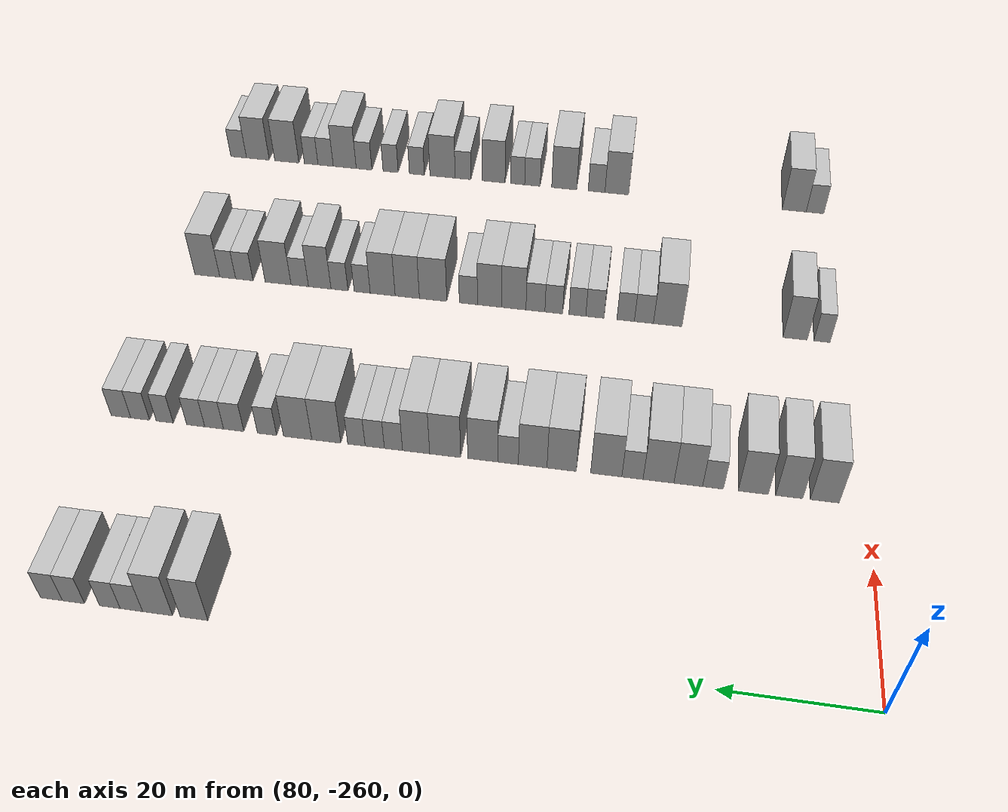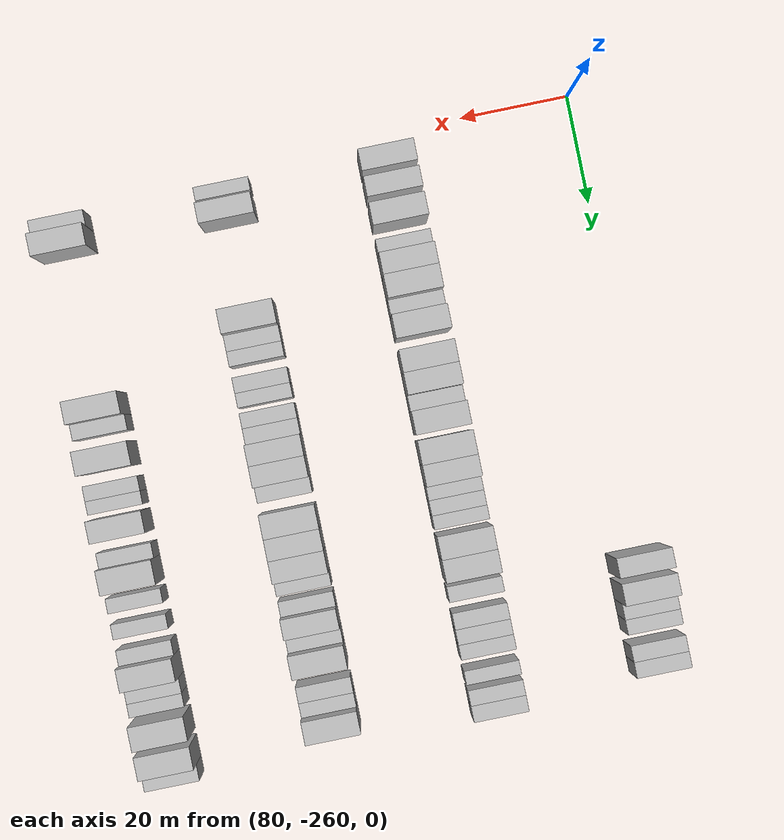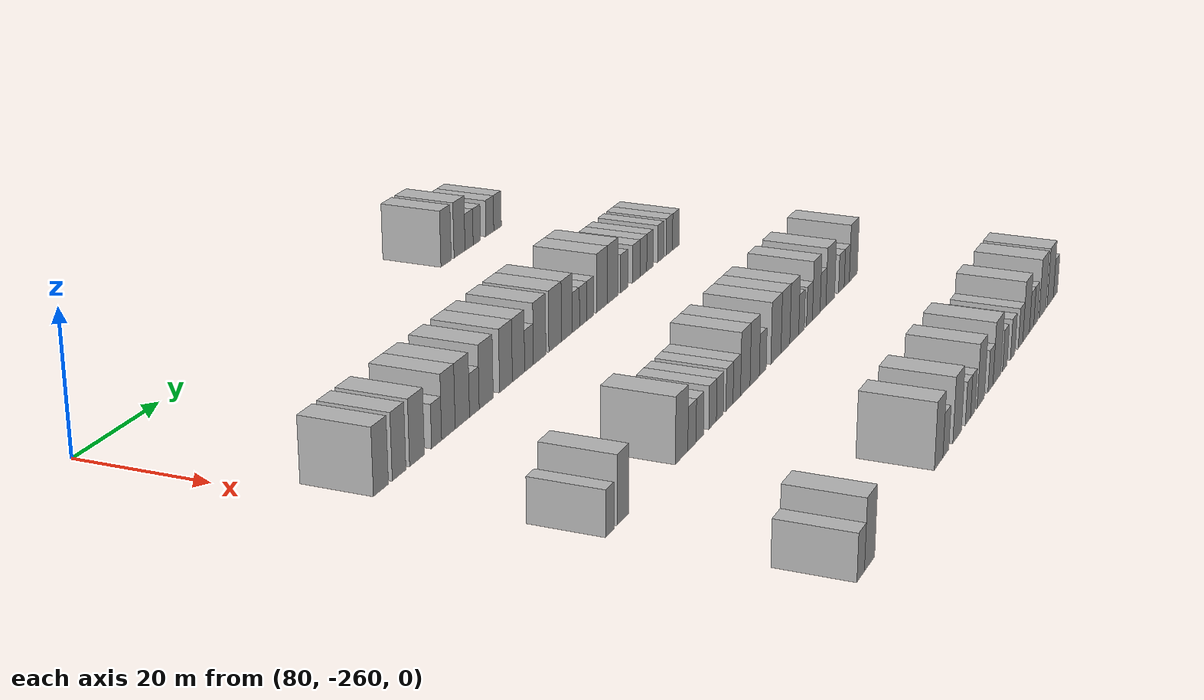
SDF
<sdf version="1.6">
 <world name="default">
  <model name="building_518">
   <static>1</static>
   <pose>85.0000 -174.7602 0 0.000000 0.000000 0.000000</pose>
   <link name="link">
    <pose>0 0 4.50 0 0 0</pose>
    <collision name="collision"><geometry><box><size>10.0000 3.6085 9.0000</size></box></geometry></collision>
    <visual name="visual">
     <cast_shadows>0</cast_shadows>
     <geometry><box><size>10.0000 3.6085 9.0000</size></box></geometry>
     <material>
      <script>
       <uri>model://HANNAS_wall/materials/scripts</uri>
       <uri>model://HANNAS_wall/materials/textures</uri>
       <name>vrc/HANNAS_wall</name>
      </script>
     </material>
    </visual>
   </link>
  </model>
  <model name="building_519">
   <static>1</static>
   <pose>85.0000 -169.9796 0 0.000000 0.000000 0.000000</pose>
   <link name="link">
    <pose>0 0 4.50 0 0 0</pose>
    <collision name="collision"><geometry><box><size>10.0000 3.9527 9.0000</size></box></geometry></collision>
    <visual name="visual">
     <cast_shadows>0</cast_shadows>
     <geometry><box><size>10.0000 3.9527 9.0000</size></box></geometry>
     <material>
      <script>
       <uri>model://HANNAS_wall/materials/scripts</uri>
       <uri>model://HANNAS_wall/materials/textures</uri>
       <name>vrc/HANNAS_wall</name>
      </script>
     </material>
    </visual>
   </link>
  </model>
  <model name="building_520">
   <static>1</static>
   <pose>85.0000 -166.5234 0 0.000000 0.000000 0.000000</pose>
   <link name="link">
    <pose>0 0 3.00 0 0 0</pose>
    <collision name="collision"><geometry><box><size>10.0000 2.9598 6.0000</size></box></geometry></collision>
    <visual name="visual">
     <cast_shadows>0</cast_shadows>
     <geometry><box><size>10.0000 2.9598 6.0000</size></box></geometry>
     <material>
      <script>
       <uri>model://HANNAS_wall/materials/scripts</uri>
       <uri>model://HANNAS_wall/materials/textures</uri>
       <name>vrc/HANNAS_wall</name>
      </script>
     </material>
    </visual>
   </link>
  </model>
  <model name="building_521">
   <static>1</static>
   <pose>85.0000 -163.6784 0 0.000000 0.000000 0.000000</pose>
   <link name="link">
    <pose>0 0 3.00 0 0 0</pose>
    <collision name="collision"><geometry><box><size>10.0000 2.7301 6.0000</size></box></geometry></collision>
    <visual name="visual">
     <cast_shadows>0</cast_shadows>
     <geometry><box><size>10.0000 2.7301 6.0000</size></box></geometry>
     <material>
      <script>
       <uri>model://HANNAS_wall/materials/scripts</uri>
       <uri>model://HANNAS_wall/materials/textures</uri>
       <name>vrc/HANNAS_wall</name>
      </script>
     </material>
    </visual>
   </link>
  </model>
  <model name="building_522">
   <static>1</static>
   <pose>85.0000 -158.8278 0 0.000000 0.000000 0.000000</pose>
   <link name="link">
    <pose>0 0 3.00 0 0 0</pose>
    <collision name="collision"><geometry><box><size>10.0000 2.9711 6.0000</size></box></geometry></collision>
    <visual name="visual">
     <cast_shadows>0</cast_shadows>
     <geometry><box><size>10.0000 2.9711 6.0000</size></box></geometry>
     <material>
      <script>
       <uri>model://HANNAS_wall/materials/scripts</uri>
       <uri>model://HANNAS_wall/materials/textures</uri>
       <name>vrc/HANNAS_wall</name>
      </script>
     </material>
    </visual>
   </link>
  </model>
  <model name="building_523">
   <static>1</static>
   <pose>85.0000 -155.8827 0 0.000000 0.000000 0.000000</pose>
   <link name="link">
    <pose>0 0 3.00 0 0 0</pose>
    <collision name="collision"><geometry><box><size>10.0000 2.9192 6.0000</size></box></geometry></collision>
    <visual name="visual">
     <cast_shadows>0</cast_shadows>
     <geometry><box><size>10.0000 2.9192 6.0000</size></box></geometry>
     <material>
      <script>
       <uri>model://HANNAS_wall/materials/scripts</uri>
       <uri>model://HANNAS_wall/materials/textures</uri>
       <name>vrc/HANNAS_wall</name>
      </script>
     </material>
    </visual>
   </link>
  </model>
  <model name="building_724">
   <static>1</static>
   <pose>115.0000 -254.0323 0 0.000000 0.000000 0.000000</pose>
   <link name="link">
    <pose>0 0 4.50 0 0 0</pose>
    <collision name="collision"><geometry><box><size>10.0000 3.8875 9.0000</size></box></geometry></collision>
    <visual name="visual">
     <cast_shadows>0</cast_shadows>
     <geometry><box><size>10.0000 3.8875 9.0000</size></box></geometry>
     <material>
      <script>
       <uri>model://HANNAS_wall/materials/scripts</uri>
       <uri>model://HANNAS_wall/materials/textures</uri>
       <name>vrc/HANNAS_wall</name>
      </script>
     </material>
    </visual>
   </link>
  </model>
  <model name="building_725">
   <static>1</static>
   <pose>115.0000 -249.2647 0 0.000000 0.000000 0.000000</pose>
   <link name="link">
    <pose>0 0 4.50 0 0 0</pose>
    <collision name="collision"><geometry><box><size>10.0000 3.6476 9.0000</size></box></geometry></collision>
    <visual name="visual">
     <cast_shadows>0</cast_shadows>
     <geometry><box><size>10.0000 3.6476 9.0000</size></box></geometry>
     <material>
      <script>
       <uri>model://HANNAS_wall/materials/scripts</uri>
       <uri>model://HANNAS_wall/materials/textures</uri>
       <name>vrc/HANNAS_wall</name>
      </script>
     </material>
    </visual>
   </link>
  </model>
  <model name="building_726">
   <static>1</static>
   <pose>115.0000 -244.4013 0 0.000000 0.000000 0.000000</pose>
   <link name="link">
    <pose>0 0 4.50 0 0 0</pose>
    <collision name="collision"><geometry><box><size>10.0000 4.0792 9.0000</size></box></geometry></collision>
    <visual name="visual">
     <cast_shadows>0</cast_shadows>
     <geometry><box><size>10.0000 4.0792 9.0000</size></box></geometry>
     <material>
      <script>
       <uri>model://HANNAS_wall/materials/scripts</uri>
       <uri>model://HANNAS_wall/materials/textures</uri>
       <name>vrc/HANNAS_wall</name>
      </script>
     </material>
    </visual>
   </link>
  </model>
  <model name="building_727">
   <static>1</static>
   <pose>115.0000 -238.9342 0 0.000000 0.000000 0.000000</pose>
   <link name="link">
    <pose>0 0 3.00 0 0 0</pose>
    <collision name="collision"><geometry><box><size>10.0000 2.8551 6.0000</size></box></geometry></collision>
    <visual name="visual">
     <cast_shadows>0</cast_shadows>
     <geometry><box><size>10.0000 2.8551 6.0000</size></box></geometry>
     <material>
      <script>
       <uri>model://HANNAS_wall/materials/scripts</uri>
       <uri>model://HANNAS_wall/materials/textures</uri>
       <name>vrc/HANNAS_wall</name>
      </script>
     </material>
    </visual>
   </link>
  </model>
  <model name="building_728">
   <static>1</static>
   <pose>115.0000 -235.5442 0 0.000000 0.000000 0.000000</pose>
   <link name="link">
    <pose>0 0 4.50 0 0 0</pose>
    <collision name="collision"><geometry><box><size>10.0000 3.9249 9.0000</size></box></geometry></collision>
    <visual name="visual">
     <cast_shadows>0</cast_shadows>
     <geometry><box><size>10.0000 3.9249 9.0000</size></box></geometry>
     <material>
      <script>
       <uri>model://HANNAS_wall/materials/scripts</uri>
       <uri>model://HANNAS_wall/materials/textures</uri>
       <name>vrc/HANNAS_wall</name>
      </script>
     </material>
    </visual>
   </link>
  </model>
  <model name="building_729">
   <static>1</static>
   <pose>115.0000 -231.4609 0 0.000000 0.000000 0.000000</pose>
   <link name="link">
    <pose>0 0 4.50 0 0 0</pose>
    <collision name="collision"><geometry><box><size>10.0000 4.2416 9.0000</size></box></geometry></collision>
    <visual name="visual">
     <cast_shadows>0</cast_shadows>
     <geometry><box><size>10.0000 4.2416 9.0000</size></box></geometry>
     <material>
      <script>
       <uri>model://HANNAS_wall/materials/scripts</uri>
       <uri>model://HANNAS_wall/materials/textures</uri>
       <name>vrc/HANNAS_wall</name>
      </script>
     </material>
    </visual>
   </link>
  </model>
  <model name="building_730">
   <static>1</static>
   <pose>115.0000 -227.8737 0 0.000000 0.000000 0.000000</pose>
   <link name="link">
    <pose>0 0 3.00 0 0 0</pose>
    <collision name="collision"><geometry><box><size>10.0000 2.9326 6.0000</size></box></geometry></collision>
    <visual name="visual">
     <cast_shadows>0</cast_shadows>
     <geometry><box><size>10.0000 2.9326 6.0000</size></box></geometry>
     <material>
      <script>
       <uri>model://HANNAS_wall/materials/scripts</uri>
       <uri>model://HANNAS_wall/materials/textures</uri>
       <name>vrc/HANNAS_wall</name>
      </script>
     </material>
    </visual>
   </link>
  </model>
  <model name="building_731">
   <static>1</static>
   <pose>115.0000 -224.2424 0 0.000000 0.000000 0.000000</pose>
   <link name="link">
    <pose>0 0 4.50 0 0 0</pose>
    <collision name="collision"><geometry><box><size>10.0000 4.3300 9.0000</size></box></geometry></collision>
    <visual name="visual">
     <cast_shadows>0</cast_shadows>
     <geometry><box><size>10.0000 4.3300 9.0000</size></box></geometry>
     <material>
      <script>
       <uri>model://HANNAS_wall/materials/scripts</uri>
       <uri>model://HANNAS_wall/materials/textures</uri>
       <name>vrc/HANNAS_wall</name>
      </script>
     </material>
    </visual>
   </link>
  </model>
  <model name="building_732">
   <static>1</static>
   <pose>115.0000 -218.0277 0 0.000000 0.000000 0.000000</pose>
   <link name="link">
    <pose>0 0 4.50 0 0 0</pose>
    <collision name="collision"><geometry><box><size>10.0000 4.0995 9.0000</size></box></geometry></collision>
    <visual name="visual">
     <cast_shadows>0</cast_shadows>
     <geometry><box><size>10.0000 4.0995 9.0000</size></box></geometry>
     <material>
      <script>
       <uri>model://HANNAS_wall/materials/scripts</uri>
       <uri>model://HANNAS_wall/materials/textures</uri>
       <name>vrc/HANNAS_wall</name>
      </script>
     </material>
    </visual>
   </link>
  </model>
  <model name="building_733">
   <static>1</static>
   <pose>115.0000 -213.9700 0 0.000000 0.000000 0.000000</pose>
   <link name="link">
    <pose>0 0 4.50 0 0 0</pose>
    <collision name="collision"><geometry><box><size>10.0000 4.0159 9.0000</size></box></geometry></collision>
    <visual name="visual">
     <cast_shadows>0</cast_shadows>
     <geometry><box><size>10.0000 4.0159 9.0000</size></box></geometry>
     <material>
      <script>
       <uri>model://HANNAS_wall/materials/scripts</uri>
       <uri>model://HANNAS_wall/materials/textures</uri>
       <name>vrc/HANNAS_wall</name>
      </script>
     </material>
    </visual>
   </link>
  </model>
  <model name="building_734">
   <static>1</static>
   <pose>115.0000 -210.5122 0 0.000000 0.000000 0.000000</pose>
   <link name="link">
    <pose>0 0 3.00 0 0 0</pose>
    <collision name="collision"><geometry><box><size>10.0000 2.8999 6.0000</size></box></geometry></collision>
    <visual name="visual">
     <cast_shadows>0</cast_shadows>
     <geometry><box><size>10.0000 2.8999 6.0000</size></box></geometry>
     <material>
      <script>
       <uri>model://HANNAS_wall/materials/scripts</uri>
       <uri>model://HANNAS_wall/materials/textures</uri>
       <name>vrc/HANNAS_wall</name>
      </script>
     </material>
    </visual>
   </link>
  </model>
  <model name="building_735">
   <static>1</static>
   <pose>115.0000 -206.9286 0 0.000000 0.000000 0.000000</pose>
   <link name="link">
    <pose>0 0 4.50 0 0 0</pose>
    <collision name="collision"><geometry><box><size>10.0000 4.2672 9.0000</size></box></geometry></collision>
    <visual name="visual">
     <cast_shadows>0</cast_shadows>
     <geometry><box><size>10.0000 4.2672 9.0000</size></box></geometry>
     <material>
      <script>
       <uri>model://HANNAS_wall/materials/scripts</uri>
       <uri>model://HANNAS_wall/materials/textures</uri>
       <name>vrc/HANNAS_wall</name>
      </script>
     </material>
    </visual>
   </link>
  </model>
  <model name="building_736">
   <static>1</static>
   <pose>115.0000 -201.5834 0 0.000000 0.000000 0.000000</pose>
   <link name="link">
    <pose>0 0 4.50 0 0 0</pose>
    <collision name="collision"><geometry><box><size>10.0000 4.4232 9.0000</size></box></geometry></collision>
    <visual name="visual">
     <cast_shadows>0</cast_shadows>
     <geometry><box><size>10.0000 4.4232 9.0000</size></box></geometry>
     <material>
      <script>
       <uri>model://HANNAS_wall/materials/scripts</uri>
       <uri>model://HANNAS_wall/materials/textures</uri>
       <name>vrc/HANNAS_wall</name>
      </script>
     </material>
    </visual>
   </link>
  </model>
  <model name="building_737">
   <static>1</static>
   <pose>115.0000 -197.4317 0 0.000000 0.000000 0.000000</pose>
   <link name="link">
    <pose>0 0 4.50 0 0 0</pose>
    <collision name="collision"><geometry><box><size>10.0000 3.8803 9.0000</size></box></geometry></collision>
    <visual name="visual">
     <cast_shadows>0</cast_shadows>
     <geometry><box><size>10.0000 3.8803 9.0000</size></box></geometry>
     <material>
      <script>
       <uri>model://HANNAS_wall/materials/scripts</uri>
       <uri>model://HANNAS_wall/materials/textures</uri>
       <name>vrc/HANNAS_wall</name>
      </script>
     </material>
    </visual>
   </link>
  </model>
  <model name="building_738">
   <static>1</static>
   <pose>115.0000 -194.1814 0 0.000000 0.000000 0.000000</pose>
   <link name="link">
    <pose>0 0 3.00 0 0 0</pose>
    <collision name="collision"><geometry><box><size>10.0000 2.6202 6.0000</size></box></geometry></collision>
    <visual name="visual">
     <cast_shadows>0</cast_shadows>
     <geometry><box><size>10.0000 2.6202 6.0000</size></box></geometry>
     <material>
      <script>
       <uri>model://HANNAS_wall/materials/scripts</uri>
       <uri>model://HANNAS_wall/materials/textures</uri>
       <name>vrc/HANNAS_wall</name>
      </script>
     </material>
    </visual>
   </link>
  </model>
  <model name="building_739">
   <static>1</static>
   <pose>115.0000 -191.4876 0 0.000000 0.000000 0.000000</pose>
   <link name="link">
    <pose>0 0 3.00 0 0 0</pose>
    <collision name="collision"><geometry><box><size>10.0000 2.7673 6.0000</size></box></geometry></collision>
    <visual name="visual">
     <cast_shadows>0</cast_shadows>
     <geometry><box><size>10.0000 2.7673 6.0000</size></box></geometry>
     <material>
      <script>
       <uri>model://HANNAS_wall/materials/scripts</uri>
       <uri>model://HANNAS_wall/materials/textures</uri>
       <name>vrc/HANNAS_wall</name>
      </script>
     </material>
    </visual>
   </link>
  </model>
  <model name="building_740">
   <static>1</static>
   <pose>115.0000 -188.8408 0 0.000000 0.000000 0.000000</pose>
   <link name="link">
    <pose>0 0 3.00 0 0 0</pose>
    <collision name="collision"><geometry><box><size>10.0000 2.5262 6.0000</size></box></geometry></collision>
    <visual name="visual">
     <cast_shadows>0</cast_shadows>
     <geometry><box><size>10.0000 2.5262 6.0000</size></box></geometry>
     <material>
      <script>
       <uri>model://HANNAS_wall/materials/scripts</uri>
       <uri>model://HANNAS_wall/materials/textures</uri>
       <name>vrc/HANNAS_wall</name>
      </script>
     </material>
    </visual>
   </link>
  </model>
  <model name="building_741">
   <static>1</static>
   <pose>115.0000 -184.4664 0 0.000000 0.000000 0.000000</pose>
   <link name="link">
    <pose>0 0 4.50 0 0 0</pose>
    <collision name="collision"><geometry><box><size>10.0000 4.2226 9.0000</size></box></geometry></collision>
    <visual name="visual">
     <cast_shadows>0</cast_shadows>
     <geometry><box><size>10.0000 4.2226 9.0000</size></box></geometry>
     <material>
      <script>
       <uri>model://HANNAS_wall/materials/scripts</uri>
       <uri>model://HANNAS_wall/materials/textures</uri>
       <name>vrc/HANNAS_wall</name>
      </script>
     </material>
    </visual>
   </link>
  </model>
  <model name="building_742">
   <static>1</static>
   <pose>115.0000 -180.2808 0 0.000000 0.000000 0.000000</pose>
   <link name="link">
    <pose>0 0 4.50 0 0 0</pose>
    <collision name="collision"><geometry><box><size>10.0000 4.1486 9.0000</size></box></geometry></collision>
    <visual name="visual">
     <cast_shadows>0</cast_shadows>
     <geometry><box><size>10.0000 4.1486 9.0000</size></box></geometry>
     <material>
      <script>
       <uri>model://HANNAS_wall/materials/scripts</uri>
       <uri>model://HANNAS_wall/materials/textures</uri>
       <name>vrc/HANNAS_wall</name>
      </script>
     </material>
    </visual>
   </link>
  </model>
  <model name="building_743">
   <static>1</static>
   <pose>115.0000 -175.7957 0 0.000000 0.000000 0.000000</pose>
   <link name="link">
    <pose>0 0 3.00 0 0 0</pose>
    <collision name="collision"><geometry><box><size>10.0000 2.8216 6.0000</size></box></geometry></collision>
    <visual name="visual">
     <cast_shadows>0</cast_shadows>
     <geometry><box><size>10.0000 2.8216 6.0000</size></box></geometry>
     <material>
      <script>
       <uri>model://HANNAS_wall/materials/scripts</uri>
       <uri>model://HANNAS_wall/materials/textures</uri>
       <name>vrc/HANNAS_wall</name>
      </script>
     </material>
    </visual>
   </link>
  </model>
  <model name="building_744">
   <static>1</static>
   <pose>115.0000 -170.8857 0 0.000000 0.000000 0.000000</pose>
   <link name="link">
    <pose>0 0 3.00 0 0 0</pose>
    <collision name="collision"><geometry><box><size>10.0000 2.9984 6.0000</size></box></geometry></collision>
    <visual name="visual">
     <cast_shadows>0</cast_shadows>
     <geometry><box><size>10.0000 2.9984 6.0000</size></box></geometry>
     <material>
      <script>
       <uri>model://HANNAS_wall/materials/scripts</uri>
       <uri>model://HANNAS_wall/materials/textures</uri>
       <name>vrc/HANNAS_wall</name>
      </script>
     </material>
    </visual>
   </link>
  </model>
  <model name="building_745">
   <static>1</static>
   <pose>115.0000 -167.9898 0 0.000000 0.000000 0.000000</pose>
   <link name="link">
    <pose>0 0 3.00 0 0 0</pose>
    <collision name="collision"><geometry><box><size>10.0000 2.7936 6.0000</size></box></geometry></collision>
    <visual name="visual">
     <cast_shadows>0</cast_shadows>
     <geometry><box><size>10.0000 2.7936 6.0000</size></box></geometry>
     <material>
      <script>
       <uri>model://HANNAS_wall/materials/scripts</uri>
       <uri>model://HANNAS_wall/materials/textures</uri>
       <name>vrc/HANNAS_wall</name>
      </script>
     </material>
    </visual>
   </link>
  </model>
  <model name="building_746">
   <static>1</static>
   <pose>115.0000 -165.2445 0 0.000000 0.000000 0.000000</pose>
   <link name="link">
    <pose>0 0 3.00 0 0 0</pose>
    <collision name="collision"><geometry><box><size>10.0000 2.6969 6.0000</size></box></geometry></collision>
    <visual name="visual">
     <cast_shadows>0</cast_shadows>
     <geometry><box><size>10.0000 2.6969 6.0000</size></box></geometry>
     <material>
      <script>
       <uri>model://HANNAS_wall/materials/scripts</uri>
       <uri>model://HANNAS_wall/materials/textures</uri>
       <name>vrc/HANNAS_wall</name>
      </script>
     </material>
    </visual>
   </link>
  </model>
  <model name="building_747">
   <static>1</static>
   <pose>115.0000 -160.6203 0 0.000000 0.000000 0.000000</pose>
   <link name="link">
    <pose>0 0 3.00 0 0 0</pose>
    <collision name="collision"><geometry><box><size>10.0000 2.5515 6.0000</size></box></geometry></collision>
    <visual name="visual">
     <cast_shadows>0</cast_shadows>
     <geometry><box><size>10.0000 2.5515 6.0000</size></box></geometry>
     <material>
      <script>
       <uri>model://HANNAS_wall/materials/scripts</uri>
       <uri>model://HANNAS_wall/materials/textures</uri>
       <name>vrc/HANNAS_wall</name>
      </script>
     </material>
    </visual>
   </link>
  </model>
  <model name="building_748">
   <static>1</static>
   <pose>115.0000 -156.9399 0 0.000000 0.000000 0.000000</pose>
   <link name="link">
    <pose>0 0 3.00 0 0 0</pose>
    <collision name="collision"><geometry><box><size>10.0000 2.8092 6.0000</size></box></geometry></collision>
    <visual name="visual">
     <cast_shadows>0</cast_shadows>
     <geometry><box><size>10.0000 2.8092 6.0000</size></box></geometry>
     <material>
      <script>
       <uri>model://HANNAS_wall/materials/scripts</uri>
       <uri>model://HANNAS_wall/materials/textures</uri>
       <name>vrc/HANNAS_wall</name>
      </script>
     </material>
    </visual>
   </link>
  </model>
  <model name="building_749">
   <static>1</static>
   <pose>115.0000 -154.0587 0 0.000000 0.000000 0.000000</pose>
   <link name="link">
    <pose>0 0 3.00 0 0 0</pose>
    <collision name="collision"><geometry><box><size>10.0000 2.9532 6.0000</size></box></geometry></collision>
    <visual name="visual">
     <cast_shadows>0</cast_shadows>
     <geometry><box><size>10.0000 2.9532 6.0000</size></box></geometry>
     <material>
      <script>
       <uri>model://HANNAS_wall/materials/scripts</uri>
       <uri>model://HANNAS_wall/materials/textures</uri>
       <name>vrc/HANNAS_wall</name>
      </script>
     </material>
    </visual>
   </link>
  </model>
  <model name="building_954">
   <static>1</static>
   <pose>145.0000 -254.7221 0 0.000000 0.000000 0.000000</pose>
   <link name="link">
    <pose>0 0 3.00 0 0 0</pose>
    <collision name="collision"><geometry><box><size>10.0000 2.4305 6.0000</size></box></geometry></collision>
    <visual name="visual">
     <cast_shadows>0</cast_shadows>
     <geometry><box><size>10.0000 2.4305 6.0000</size></box></geometry>
     <material>
      <script>
       <uri>model://HANNAS_wall/materials/scripts</uri>
       <uri>model://HANNAS_wall/materials/textures</uri>
       <name>vrc/HANNAS_wall</name>
      </script>
     </material>
    </visual>
   </link>
  </model>
  <model name="building_955">
   <static>1</static>
   <pose>145.0000 -250.6689 0 0.000000 0.000000 0.000000</pose>
   <link name="link">
    <pose>0 0 4.50 0 0 0</pose>
    <collision name="collision"><geometry><box><size>10.0000 3.6760 9.0000</size></box></geometry></collision>
    <visual name="visual">
     <cast_shadows>0</cast_shadows>
     <geometry><box><size>10.0000 3.6760 9.0000</size></box></geometry>
     <material>
      <script>
       <uri>model://HANNAS_wall/materials/scripts</uri>
       <uri>model://HANNAS_wall/materials/textures</uri>
       <name>vrc/HANNAS_wall</name>
      </script>
     </material>
    </visual>
   </link>
  </model>
  <model name="building_956">
   <static>1</static>
   <pose>145.0000 -231.2246 0 0.000000 0.000000 0.000000</pose>
   <link name="link">
    <pose>0 0 4.50 0 0 0</pose>
    <collision name="collision"><geometry><box><size>10.0000 4.4042 9.0000</size></box></geometry></collision>
    <visual name="visual">
     <cast_shadows>0</cast_shadows>
     <geometry><box><size>10.0000 4.4042 9.0000</size></box></geometry>
     <material>
      <script>
       <uri>model://HANNAS_wall/materials/scripts</uri>
       <uri>model://HANNAS_wall/materials/textures</uri>
       <name>vrc/HANNAS_wall</name>
      </script>
     </material>
    </visual>
   </link>
  </model>
  <model name="building_957">
   <static>1</static>
   <pose>145.0000 -227.5533 0 0.000000 0.000000 0.000000</pose>
   <link name="link">
    <pose>0 0 3.00 0 0 0</pose>
    <collision name="collision"><geometry><box><size>10.0000 2.9383 6.0000</size></box></geometry></collision>
    <visual name="visual">
     <cast_shadows>0</cast_shadows>
     <geometry><box><size>10.0000 2.9383 6.0000</size></box></geometry>
     <material>
      <script>
       <uri>model://HANNAS_wall/materials/scripts</uri>
       <uri>model://HANNAS_wall/materials/textures</uri>
       <name>vrc/HANNAS_wall</name>
      </script>
     </material>
    </visual>
   </link>
  </model>
  <model name="building_958">
   <static>1</static>
   <pose>145.0000 -224.7233 0 0.000000 0.000000 0.000000</pose>
   <link name="link">
    <pose>0 0 3.00 0 0 0</pose>
    <collision name="collision"><geometry><box><size>10.0000 2.7219 6.0000</size></box></geometry></collision>
    <visual name="visual">
     <cast_shadows>0</cast_shadows>
     <geometry><box><size>10.0000 2.7219 6.0000</size></box></geometry>
     <material>
      <script>
       <uri>model://HANNAS_wall/materials/scripts</uri>
       <uri>model://HANNAS_wall/materials/textures</uri>
       <name>vrc/HANNAS_wall</name>
      </script>
     </material>
    </visual>
   </link>
  </model>
  <model name="building_959">
   <static>1</static>
   <pose>145.0000 -219.9428 0 0.000000 0.000000 0.000000</pose>
   <link name="link">
    <pose>0 0 3.00 0 0 0</pose>
    <collision name="collision"><geometry><box><size>10.0000 2.8390 6.0000</size></box></geometry></collision>
    <visual name="visual">
     <cast_shadows>0</cast_shadows>
     <geometry><box><size>10.0000 2.8390 6.0000</size></box></geometry>
     <material>
      <script>
       <uri>model://HANNAS_wall/materials/scripts</uri>
       <uri>model://HANNAS_wall/materials/textures</uri>
       <name>vrc/HANNAS_wall</name>
      </script>
     </material>
    </visual>
   </link>
  </model>
  <model name="building_960">
   <static>1</static>
   <pose>145.0000 -217.2023 0 0.000000 0.000000 0.000000</pose>
   <link name="link">
    <pose>0 0 3.00 0 0 0</pose>
    <collision name="collision"><geometry><box><size>10.0000 2.6421 6.0000</size></box></geometry></collision>
    <visual name="visual">
     <cast_shadows>0</cast_shadows>
     <geometry><box><size>10.0000 2.6421 6.0000</size></box></geometry>
     <material>
      <script>
       <uri>model://HANNAS_wall/materials/scripts</uri>
       <uri>model://HANNAS_wall/materials/textures</uri>
       <name>vrc/HANNAS_wall</name>
      </script>
     </material>
    </visual>
   </link>
  </model>
  <model name="building_961">
   <static>1</static>
   <pose>145.0000 -213.4932 0 0.000000 0.000000 0.000000</pose>
   <link name="link">
    <pose>0 0 3.00 0 0 0</pose>
    <collision name="collision"><geometry><box><size>10.0000 2.7760 6.0000</size></box></geometry></collision>
    <visual name="visual">
     <cast_shadows>0</cast_shadows>
     <geometry><box><size>10.0000 2.7760 6.0000</size></box></geometry>
     <material>
      <script>
       <uri>model://HANNAS_wall/materials/scripts</uri>
       <uri>model://HANNAS_wall/materials/textures</uri>
       <name>vrc/HANNAS_wall</name>
      </script>
     </material>
    </visual>
   </link>
  </model>
  <model name="building_962">
   <static>1</static>
   <pose>145.0000 -210.6154 0 0.000000 0.000000 0.000000</pose>
   <link name="link">
    <pose>0 0 3.00 0 0 0</pose>
    <collision name="collision"><geometry><box><size>10.0000 2.9798 6.0000</size></box></geometry></collision>
    <visual name="visual">
     <cast_shadows>0</cast_shadows>
     <geometry><box><size>10.0000 2.9798 6.0000</size></box></geometry>
     <material>
      <script>
       <uri>model://HANNAS_wall/materials/scripts</uri>
       <uri>model://HANNAS_wall/materials/textures</uri>
       <name>vrc/HANNAS_wall</name>
      </script>
     </material>
    </visual>
   </link>
  </model>
  <model name="building_963">
   <static>1</static>
   <pose>145.0000 -207.1997 0 0.000000 0.000000 0.000000</pose>
   <link name="link">
    <pose>0 0 4.50 0 0 0</pose>
    <collision name="collision"><geometry><box><size>10.0000 3.8517 9.0000</size></box></geometry></collision>
    <visual name="visual">
     <cast_shadows>0</cast_shadows>
     <geometry><box><size>10.0000 3.8517 9.0000</size></box></geometry>
     <material>
      <script>
       <uri>model://HANNAS_wall/materials/scripts</uri>
       <uri>model://HANNAS_wall/materials/textures</uri>
       <name>vrc/HANNAS_wall</name>
      </script>
     </material>
    </visual>
   </link>
  </model>
  <model name="building_964">
   <static>1</static>
   <pose>145.0000 -203.3583 0 0.000000 0.000000 0.000000</pose>
   <link name="link">
    <pose>0 0 4.50 0 0 0</pose>
    <collision name="collision"><geometry><box><size>10.0000 3.8310 9.0000</size></box></geometry></collision>
    <visual name="visual">
     <cast_shadows>0</cast_shadows>
     <geometry><box><size>10.0000 3.8310 9.0000</size></box></geometry>
     <material>
      <script>
       <uri>model://HANNAS_wall/materials/scripts</uri>
       <uri>model://HANNAS_wall/materials/textures</uri>
       <name>vrc/HANNAS_wall</name>
      </script>
     </material>
    </visual>
   </link>
  </model>
  <model name="building_965">
   <static>1</static>
   <pose>145.0000 -199.9959 0 0.000000 0.000000 0.000000</pose>
   <link name="link">
    <pose>0 0 3.00 0 0 0</pose>
    <collision name="collision"><geometry><box><size>10.0000 2.8937 6.0000</size></box></geometry></collision>
    <visual name="visual">
     <cast_shadows>0</cast_shadows>
     <geometry><box><size>10.0000 2.8937 6.0000</size></box></geometry>
     <material>
      <script>
       <uri>model://HANNAS_wall/materials/scripts</uri>
       <uri>model://HANNAS_wall/materials/textures</uri>
       <name>vrc/HANNAS_wall</name>
      </script>
     </material>
    </visual>
   </link>
  </model>
  <model name="building_966">
   <static>1</static>
   <pose>145.0000 -194.3509 0 0.000000 0.000000 0.000000</pose>
   <link name="link">
    <pose>0 0 4.50 0 0 0</pose>
    <collision name="collision"><geometry><box><size>10.0000 4.3964 9.0000</size></box></geometry></collision>
    <visual name="visual">
     <cast_shadows>0</cast_shadows>
     <geometry><box><size>10.0000 4.3964 9.0000</size></box></geometry>
     <material>
      <script>
       <uri>model://HANNAS_wall/materials/scripts</uri>
       <uri>model://HANNAS_wall/materials/textures</uri>
       <name>vrc/HANNAS_wall</name>
      </script>
     </material>
    </visual>
   </link>
  </model>
  <model name="building_967">
   <static>1</static>
   <pose>145.0000 -190.2019 0 0.000000 0.000000 0.000000</pose>
   <link name="link">
    <pose>0 0 4.50 0 0 0</pose>
    <collision name="collision"><geometry><box><size>10.0000 3.9015 9.0000</size></box></geometry></collision>
    <visual name="visual">
     <cast_shadows>0</cast_shadows>
     <geometry><box><size>10.0000 3.9015 9.0000</size></box></geometry>
     <material>
      <script>
       <uri>model://HANNAS_wall/materials/scripts</uri>
       <uri>model://HANNAS_wall/materials/textures</uri>
       <name>vrc/HANNAS_wall</name>
      </script>
     </material>
    </visual>
   </link>
  </model>
  <model name="building_968">
   <static>1</static>
   <pose>145.0000 -186.2313 0 0.000000 0.000000 0.000000</pose>
   <link name="link">
    <pose>0 0 4.50 0 0 0</pose>
    <collision name="collision"><geometry><box><size>10.0000 4.0398 9.0000</size></box></geometry></collision>
    <visual name="visual">
     <cast_shadows>0</cast_shadows>
     <geometry><box><size>10.0000 4.0398 9.0000</size></box></geometry>
     <material>
      <script>
       <uri>model://HANNAS_wall/materials/scripts</uri>
       <uri>model://HANNAS_wall/materials/textures</uri>
       <name>vrc/HANNAS_wall</name>
      </script>
     </material>
    </visual>
   </link>
  </model>
  <model name="building_969">
   <static>1</static>
   <pose>145.0000 -182.9128 0 0.000000 0.000000 0.000000</pose>
   <link name="link">
    <pose>0 0 3.00 0 0 0</pose>
    <collision name="collision"><geometry><box><size>10.0000 2.5971 6.0000</size></box></geometry></collision>
    <visual name="visual">
     <cast_shadows>0</cast_shadows>
     <geometry><box><size>10.0000 2.5971 6.0000</size></box></geometry>
     <material>
      <script>
       <uri>model://HANNAS_wall/materials/scripts</uri>
       <uri>model://HANNAS_wall/materials/textures</uri>
       <name>vrc/HANNAS_wall</name>
      </script>
     </material>
    </visual>
   </link>
  </model>
  <model name="building_970">
   <static>1</static>
   <pose>145.0000 -179.2294 0 0.000000 0.000000 0.000000</pose>
   <link name="link">
    <pose>0 0 3.00 0 0 0</pose>
    <collision name="collision"><geometry><box><size>10.0000 2.7698 6.0000</size></box></geometry></collision>
    <visual name="visual">
     <cast_shadows>0</cast_shadows>
     <geometry><box><size>10.0000 2.7698 6.0000</size></box></geometry>
     <material>
      <script>
       <uri>model://HANNAS_wall/materials/scripts</uri>
       <uri>model://HANNAS_wall/materials/textures</uri>
       <name>vrc/HANNAS_wall</name>
      </script>
     </material>
    </visual>
   </link>
  </model>
  <model name="building_971">
   <static>1</static>
   <pose>145.0000 -176.0003 0 0.000000 0.000000 0.000000</pose>
   <link name="link">
    <pose>0 0 4.50 0 0 0</pose>
    <collision name="collision"><geometry><box><size>10.0000 3.6883 9.0000</size></box></geometry></collision>
    <visual name="visual">
     <cast_shadows>0</cast_shadows>
     <geometry><box><size>10.0000 3.6883 9.0000</size></box></geometry>
     <material>
      <script>
       <uri>model://HANNAS_wall/materials/scripts</uri>
       <uri>model://HANNAS_wall/materials/textures</uri>
       <name>vrc/HANNAS_wall</name>
      </script>
     </material>
    </visual>
   </link>
  </model>
  <model name="building_972">
   <static>1</static>
   <pose>145.0000 -172.7312 0 0.000000 0.000000 0.000000</pose>
   <link name="link">
    <pose>0 0 3.00 0 0 0</pose>
    <collision name="collision"><geometry><box><size>10.0000 2.8499 6.0000</size></box></geometry></collision>
    <visual name="visual">
     <cast_shadows>0</cast_shadows>
     <geometry><box><size>10.0000 2.8499 6.0000</size></box></geometry>
     <material>
      <script>
       <uri>model://HANNAS_wall/materials/scripts</uri>
       <uri>model://HANNAS_wall/materials/textures</uri>
       <name>vrc/HANNAS_wall</name>
      </script>
     </material>
    </visual>
   </link>
  </model>
  <model name="building_973">
   <static>1</static>
   <pose>145.0000 -169.1739 0 0.000000 0.000000 0.000000</pose>
   <link name="link">
    <pose>0 0 4.50 0 0 0</pose>
    <collision name="collision"><geometry><box><size>10.0000 4.2646 9.0000</size></box></geometry></collision>
    <visual name="visual">
     <cast_shadows>0</cast_shadows>
     <geometry><box><size>10.0000 4.2646 9.0000</size></box></geometry>
     <material>
      <script>
       <uri>model://HANNAS_wall/materials/scripts</uri>
       <uri>model://HANNAS_wall/materials/textures</uri>
       <name>vrc/HANNAS_wall</name>
      </script>
     </material>
    </visual>
   </link>
  </model>
  <model name="building_974">
   <static>1</static>
   <pose>145.0000 -163.5966 0 0.000000 0.000000 0.000000</pose>
   <link name="link">
    <pose>0 0 3.00 0 0 0</pose>
    <collision name="collision"><geometry><box><size>10.0000 2.8900 6.0000</size></box></geometry></collision>
    <visual name="visual">
     <cast_shadows>0</cast_shadows>
     <geometry><box><size>10.0000 2.8900 6.0000</size></box></geometry>
     <material>
      <script>
       <uri>model://HANNAS_wall/materials/scripts</uri>
       <uri>model://HANNAS_wall/materials/textures</uri>
       <name>vrc/HANNAS_wall</name>
      </script>
     </material>
    </visual>
   </link>
  </model>
  <model name="building_975">
   <static>1</static>
   <pose>145.0000 -160.8407 0 0.000000 0.000000 0.000000</pose>
   <link name="link">
    <pose>0 0 3.00 0 0 0</pose>
    <collision name="collision"><geometry><box><size>10.0000 2.6219 6.0000</size></box></geometry></collision>
    <visual name="visual">
     <cast_shadows>0</cast_shadows>
     <geometry><box><size>10.0000 2.6219 6.0000</size></box></geometry>
     <material>
      <script>
       <uri>model://HANNAS_wall/materials/scripts</uri>
       <uri>model://HANNAS_wall/materials/textures</uri>
       <name>vrc/HANNAS_wall</name>
      </script>
     </material>
    </visual>
   </link>
  </model>
  <model name="building_976">
   <static>1</static>
   <pose>145.0000 -157.4432 0 0.000000 0.000000 0.000000</pose>
   <link name="link">
    <pose>0 0 4.50 0 0 0</pose>
    <collision name="collision"><geometry><box><size>10.0000 4.1732 9.0000</size></box></geometry></collision>
    <visual name="visual">
     <cast_shadows>0</cast_shadows>
     <geometry><box><size>10.0000 4.1732 9.0000</size></box></geometry>
     <material>
      <script>
       <uri>model://HANNAS_wall/materials/scripts</uri>
       <uri>model://HANNAS_wall/materials/textures</uri>
       <name>vrc/HANNAS_wall</name>
      </script>
     </material>
    </visual>
   </link>
  </model>
  <model name="building_1159">
   <static>1</static>
   <pose>175.0000 -254.6150 0 0.000000 0.000000 0.000000</pose>
   <link name="link">
    <pose>0 0 3.00 0 0 0</pose>
    <collision name="collision"><geometry><box><size>10.0000 2.9311 6.0000</size></box></geometry></collision>
    <visual name="visual">
     <cast_shadows>0</cast_shadows>
     <geometry><box><size>10.0000 2.9311 6.0000</size></box></geometry>
     <material>
      <script>
       <uri>model://HANNAS_wall/materials/scripts</uri>
       <uri>model://HANNAS_wall/materials/textures</uri>
       <name>vrc/HANNAS_wall</name>
      </script>
     </material>
    </visual>
   </link>
  </model>
  <model name="building_1160">
   <static>1</static>
   <pose>175.0000 -251.1300 0 0.000000 0.000000 0.000000</pose>
   <link name="link">
    <pose>0 0 4.50 0 0 0</pose>
    <collision name="collision"><geometry><box><size>10.0000 4.0390 9.0000</size></box></geometry></collision>
    <visual name="visual">
     <cast_shadows>0</cast_shadows>
     <geometry><box><size>10.0000 4.0390 9.0000</size></box></geometry>
     <material>
      <script>
       <uri>model://HANNAS_wall/materials/scripts</uri>
       <uri>model://HANNAS_wall/materials/textures</uri>
       <name>vrc/HANNAS_wall</name>
      </script>
     </material>
    </visual>
   </link>
  </model>
  <model name="building_1161">
   <static>1</static>
   <pose>175.0000 -220.9849 0 0.000000 0.000000 0.000000</pose>
   <link name="link">
    <pose>0 0 4.50 0 0 0</pose>
    <collision name="collision"><geometry><box><size>10.0000 4.0837 9.0000</size></box></geometry></collision>
    <visual name="visual">
     <cast_shadows>0</cast_shadows>
     <geometry><box><size>10.0000 4.0837 9.0000</size></box></geometry>
     <material>
      <script>
       <uri>model://HANNAS_wall/materials/scripts</uri>
       <uri>model://HANNAS_wall/materials/textures</uri>
       <name>vrc/HANNAS_wall</name>
      </script>
     </material>
    </visual>
   </link>
  </model>
  <model name="building_1162">
   <static>1</static>
   <pose>175.0000 -217.4992 0 0.000000 0.000000 0.000000</pose>
   <link name="link">
    <pose>0 0 3.00 0 0 0</pose>
    <collision name="collision"><geometry><box><size>10.0000 2.8879 6.0000</size></box></geometry></collision>
    <visual name="visual">
     <cast_shadows>0</cast_shadows>
     <geometry><box><size>10.0000 2.8879 6.0000</size></box></geometry>
     <material>
      <script>
       <uri>model://HANNAS_wall/materials/scripts</uri>
       <uri>model://HANNAS_wall/materials/textures</uri>
       <name>vrc/HANNAS_wall</name>
      </script>
     </material>
    </visual>
   </link>
  </model>
  <model name="building_1163">
   <static>1</static>
   <pose>175.0000 -211.8836 0 0.000000 0.000000 0.000000</pose>
   <link name="link">
    <pose>0 0 4.50 0 0 0</pose>
    <collision name="collision"><geometry><box><size>10.0000 4.3433 9.0000</size></box></geometry></collision>
    <visual name="visual">
     <cast_shadows>0</cast_shadows>
     <geometry><box><size>10.0000 4.3433 9.0000</size></box></geometry>
     <material>
      <script>
       <uri>model://HANNAS_wall/materials/scripts</uri>
       <uri>model://HANNAS_wall/materials/textures</uri>
       <name>vrc/HANNAS_wall</name>
      </script>
     </material>
    </visual>
   </link>
  </model>
  <model name="building_1164">
   <static>1</static>
   <pose>175.0000 -206.3528 0 0.000000 0.000000 0.000000</pose>
   <link name="link">
    <pose>0 0 3.00 0 0 0</pose>
    <collision name="collision"><geometry><box><size>10.0000 2.7183 6.0000</size></box></geometry></collision>
    <visual name="visual">
     <cast_shadows>0</cast_shadows>
     <geometry><box><size>10.0000 2.7183 6.0000</size></box></geometry>
     <material>
      <script>
       <uri>model://HANNAS_wall/materials/scripts</uri>
       <uri>model://HANNAS_wall/materials/textures</uri>
       <name>vrc/HANNAS_wall</name>
      </script>
     </material>
    </visual>
   </link>
  </model>
  <model name="building_1165">
   <static>1</static>
   <pose>175.0000 -203.7721 0 0.000000 0.000000 0.000000</pose>
   <link name="link">
    <pose>0 0 3.00 0 0 0</pose>
    <collision name="collision"><geometry><box><size>10.0000 2.4430 6.0000</size></box></geometry></collision>
    <visual name="visual">
     <cast_shadows>0</cast_shadows>
     <geometry><box><size>10.0000 2.4430 6.0000</size></box></geometry>
     <material>
      <script>
       <uri>model://HANNAS_wall/materials/scripts</uri>
       <uri>model://HANNAS_wall/materials/textures</uri>
       <name>vrc/HANNAS_wall</name>
      </script>
     </material>
    </visual>
   </link>
  </model>
  <model name="building_1166">
   <static>1</static>
   <pose>175.0000 -199.5571 0 0.000000 0.000000 0.000000</pose>
   <link name="link">
    <pose>0 0 4.50 0 0 0</pose>
    <collision name="collision"><geometry><box><size>10.0000 3.9869 9.0000</size></box></geometry></collision>
    <visual name="visual">
     <cast_shadows>0</cast_shadows>
     <geometry><box><size>10.0000 3.9869 9.0000</size></box></geometry>
     <material>
      <script>
       <uri>model://HANNAS_wall/materials/scripts</uri>
       <uri>model://HANNAS_wall/materials/textures</uri>
       <name>vrc/HANNAS_wall</name>
      </script>
     </material>
    </visual>
   </link>
  </model>
  <model name="building_1167">
   <static>1</static>
   <pose>175.0000 -194.1610 0 0.000000 0.000000 0.000000</pose>
   <link name="link">
    <pose>0 0 3.00 0 0 0</pose>
    <collision name="collision"><geometry><box><size>10.0000 2.8055 6.0000</size></box></geometry></collision>
    <visual name="visual">
     <cast_shadows>0</cast_shadows>
     <geometry><box><size>10.0000 2.8055 6.0000</size></box></geometry>
     <material>
      <script>
       <uri>model://HANNAS_wall/materials/scripts</uri>
       <uri>model://HANNAS_wall/materials/textures</uri>
       <name>vrc/HANNAS_wall</name>
      </script>
     </material>
    </visual>
   </link>
  </model>
  <model name="building_1168">
   <static>1</static>
   <pose>175.0000 -190.5194 0 0.000000 0.000000 0.000000</pose>
   <link name="link">
    <pose>0 0 4.50 0 0 0</pose>
    <collision name="collision"><geometry><box><size>10.0000 4.4777 9.0000</size></box></geometry></collision>
    <visual name="visual">
     <cast_shadows>0</cast_shadows>
     <geometry><box><size>10.0000 4.4777 9.0000</size></box></geometry>
     <material>
      <script>
       <uri>model://HANNAS_wall/materials/scripts</uri>
       <uri>model://HANNAS_wall/materials/textures</uri>
       <name>vrc/HANNAS_wall</name>
      </script>
     </material>
    </visual>
   </link>
  </model>
  <model name="building_1169">
   <static>1</static>
   <pose>175.0000 -185.9493 0 0.000000 0.000000 0.000000</pose>
   <link name="link">
    <pose>0 0 3.00 0 0 0</pose>
    <collision name="collision"><geometry><box><size>10.0000 2.6624 6.0000</size></box></geometry></collision>
    <visual name="visual">
     <cast_shadows>0</cast_shadows>
     <geometry><box><size>10.0000 2.6624 6.0000</size></box></geometry>
     <material>
      <script>
       <uri>model://HANNAS_wall/materials/scripts</uri>
       <uri>model://HANNAS_wall/materials/textures</uri>
       <name>vrc/HANNAS_wall</name>
      </script>
     </material>
    </visual>
   </link>
  </model>
  <model name="building_1170">
   <static>1</static>
   <pose>175.0000 -181.2641 0 0.000000 0.000000 0.000000</pose>
   <link name="link">
    <pose>0 0 3.00 0 0 0</pose>
    <collision name="collision"><geometry><box><size>10.0000 2.7078 6.0000</size></box></geometry></collision>
    <visual name="visual">
     <cast_shadows>0</cast_shadows>
     <geometry><box><size>10.0000 2.7078 6.0000</size></box></geometry>
     <material>
      <script>
       <uri>model://HANNAS_wall/materials/scripts</uri>
       <uri>model://HANNAS_wall/materials/textures</uri>
       <name>vrc/HANNAS_wall</name>
      </script>
     </material>
    </visual>
   </link>
  </model>
  <model name="building_1171">
   <static>1</static>
   <pose>175.0000 -176.4996 0 0.000000 0.000000 0.000000</pose>
   <link name="link">
    <pose>0 0 3.00 0 0 0</pose>
    <collision name="collision"><geometry><box><size>10.0000 2.8213 6.0000</size></box></geometry></collision>
    <visual name="visual">
     <cast_shadows>0</cast_shadows>
     <geometry><box><size>10.0000 2.8213 6.0000</size></box></geometry>
     <material>
      <script>
       <uri>model://HANNAS_wall/materials/scripts</uri>
       <uri>model://HANNAS_wall/materials/textures</uri>
       <name>vrc/HANNAS_wall</name>
      </script>
     </material>
    </visual>
   </link>
  </model>
  <model name="building_1172">
   <static>1</static>
   <pose>175.0000 -173.0163 0 0.000000 0.000000 0.000000</pose>
   <link name="link">
    <pose>0 0 4.50 0 0 0</pose>
    <collision name="collision"><geometry><box><size>10.0000 4.1452 9.0000</size></box></geometry></collision>
    <visual name="visual">
     <cast_shadows>0</cast_shadows>
     <geometry><box><size>10.0000 4.1452 9.0000</size></box></geometry>
     <material>
      <script>
       <uri>model://HANNAS_wall/materials/scripts</uri>
       <uri>model://HANNAS_wall/materials/textures</uri>
       <name>vrc/HANNAS_wall</name>
      </script>
     </material>
    </visual>
   </link>
  </model>
  <model name="building_1173">
   <static>1</static>
   <pose>175.0000 -169.5641 0 0.000000 0.000000 0.000000</pose>
   <link name="link">
    <pose>0 0 3.00 0 0 0</pose>
    <collision name="collision"><geometry><box><size>10.0000 2.7592 6.0000</size></box></geometry></collision>
    <visual name="visual">
     <cast_shadows>0</cast_shadows>
     <geometry><box><size>10.0000 2.7592 6.0000</size></box></geometry>
     <material>
      <script>
       <uri>model://HANNAS_wall/materials/scripts</uri>
       <uri>model://HANNAS_wall/materials/textures</uri>
       <name>vrc/HANNAS_wall</name>
      </script>
     </material>
    </visual>
   </link>
  </model>
  <model name="building_1174">
   <static>1</static>
   <pose>175.0000 -166.9468 0 0.000000 0.000000 0.000000</pose>
   <link name="link">
    <pose>0 0 3.00 0 0 0</pose>
    <collision name="collision"><geometry><box><size>10.0000 2.4756 6.0000</size></box></geometry></collision>
    <visual name="visual">
     <cast_shadows>0</cast_shadows>
     <geometry><box><size>10.0000 2.4756 6.0000</size></box></geometry>
     <material>
      <script>
       <uri>model://HANNAS_wall/materials/scripts</uri>
       <uri>model://HANNAS_wall/materials/textures</uri>
       <name>vrc/HANNAS_wall</name>
      </script>
     </material>
    </visual>
   </link>
  </model>
  <model name="building_1175">
   <static>1</static>
   <pose>175.0000 -162.5076 0 0.000000 0.000000 0.000000</pose>
   <link name="link">
    <pose>0 0 4.50 0 0 0</pose>
    <collision name="collision"><geometry><box><size>10.0000 4.4026 9.0000</size></box></geometry></collision>
    <visual name="visual">
     <cast_shadows>0</cast_shadows>
     <geometry><box><size>10.0000 4.4026 9.0000</size></box></geometry>
     <material>
      <script>
       <uri>model://HANNAS_wall/materials/scripts</uri>
       <uri>model://HANNAS_wall/materials/textures</uri>
       <name>vrc/HANNAS_wall</name>
      </script>
     </material>
    </visual>
   </link>
  </model>
  <model name="building_1176">
   <static>1</static>
   <pose>175.0000 -157.2158 0 0.000000 0.000000 0.000000</pose>
   <link name="link">
    <pose>0 0 4.50 0 0 0</pose>
    <collision name="collision"><geometry><box><size>10.0000 4.1811 9.0000</size></box></geometry></collision>
    <visual name="visual">
     <cast_shadows>0</cast_shadows>
     <geometry><box><size>10.0000 4.1811 9.0000</size></box></geometry>
     <material>
      <script>
       <uri>model://HANNAS_wall/materials/scripts</uri>
       <uri>model://HANNAS_wall/materials/textures</uri>
       <name>vrc/HANNAS_wall</name>
      </script>
     </material>
    </visual>
   </link>
  </model>
  <model name="building_1177">
   <static>1</static>
   <pose>175.0000 -153.6929 0 0.000000 0.000000 0.000000</pose>
   <link name="link">
    <pose>0 0 3.00 0 0 0</pose>
    <collision name="collision"><geometry><box><size>10.0000 2.8647 6.0000</size></box></geometry></collision>
    <visual name="visual">
     <cast_shadows>0</cast_shadows>
     <geometry><box><size>10.0000 2.8647 6.0000</size></box></geometry>
     <material>
      <script>
       <uri>model://HANNAS_wall/materials/scripts</uri>
       <uri>model://HANNAS_wall/materials/textures</uri>
       <name>vrc/HANNAS_wall</name>
      </script>
     </material>
    </visual>
   </link>
  </model>
 </world>
</sdf>
